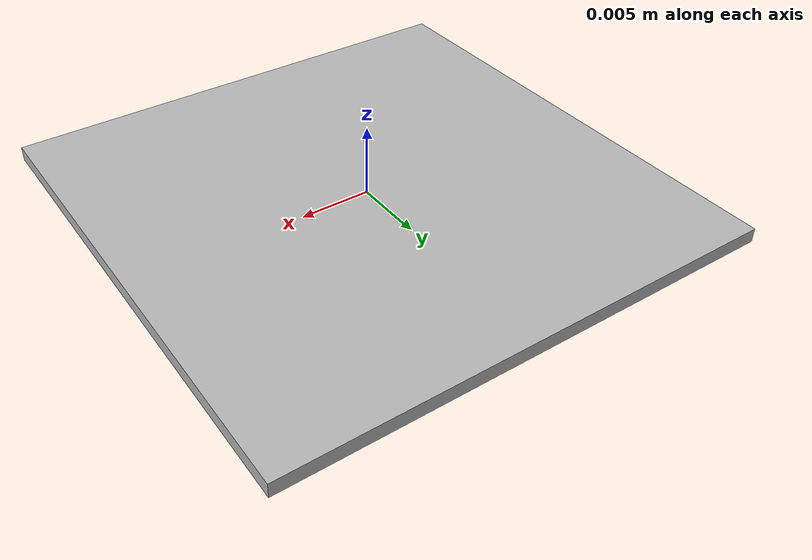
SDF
<?xml version="1.0" ?>
<sdf version="1.7">
  <model name="aruco_marker_582">
    <link name="link">
      <pose>0 0 0 0 0 0</pose>

      <collision name="collision">
        <geometry>
          <box>
            <size>0.035 0.035 0.001</size> </box>
        </geometry>
      </collision>

      <visual name="visual">
        <geometry>
          <box>
            <size>0.035 0.035 0.001</size>
          </box>
        </geometry>
        <material>
          <script>
            <uri>model://aruco_marker_582/materials/scripts</uri>
            <uri>model://aruco_marker_582/materials/textures</uri>
            <name>ArucoMarker582/Marker</name>
          </script>
        </material>
      </visual>

    </link>
    <static>true</static> </model>
</sdf>
